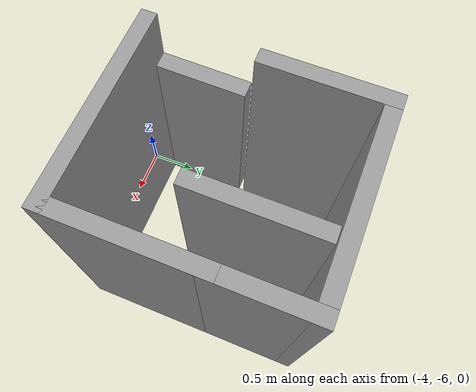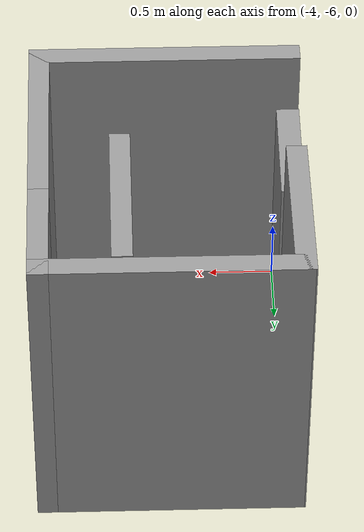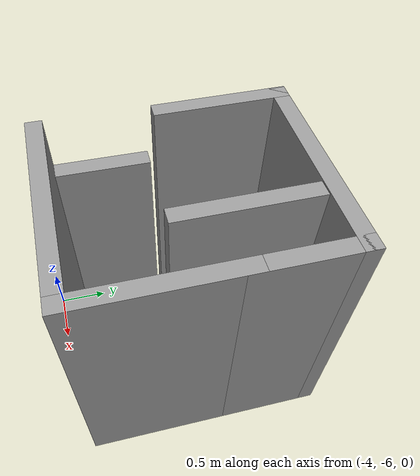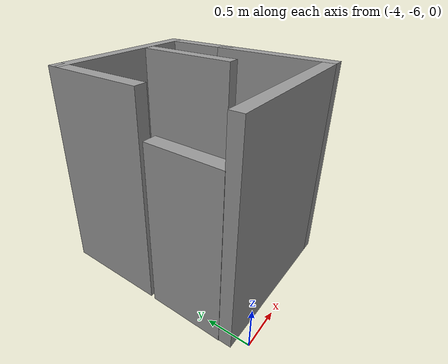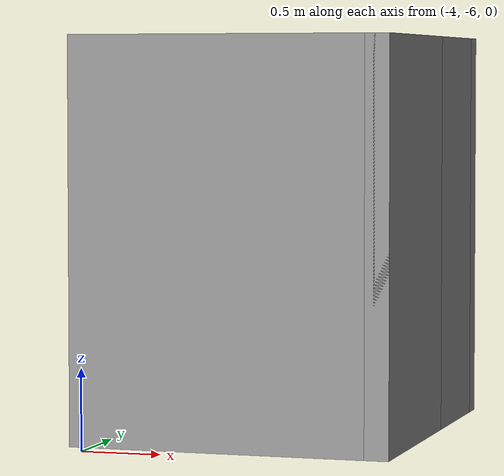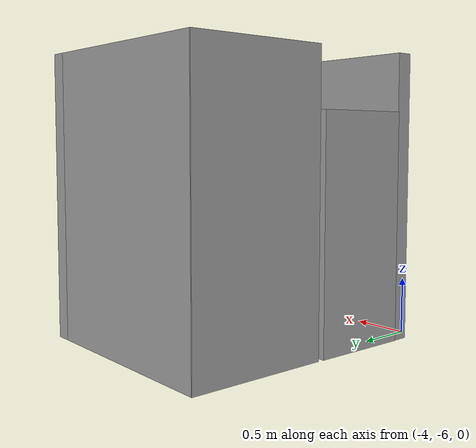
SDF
<?xml version='1.0'?>
<sdf version='1.7'>
  <model name='home_test'>
    <pose>-2.0675 -2.9325 0 0 -0 0</pose>
    <link name='Door_0'>
      <collision name='Door_0_Collision'>
        <geometry>
          <box>
            <size>0.9 0.17 2</size>
          </box>
        </geometry>
        <pose>0 0 1 0 -0 0</pose>
      </collision>
      <visual name='Door_0_Visual'>
        <pose>0 0 1 0 -0 0</pose>
        <geometry>
          <box>
            <size>0.9 0.17 2</size>
          </box>
        </geometry>
        <material>
          <script>
            <uri>file://media/materials/scripts/gazebo.material</uri>
            <name>Gazebo/Grey</name>
          </script>
        </material>
      </visual>
      <pose>-1.9825 -2.3375 0 0 0 -1.5818</pose>
    </link>
    <link name='Wall_10'>
      <collision name='Wall_10_Collision'>
        <geometry>
          <box>
            <size>1.25 0.15 2.5</size>
          </box>
        </geometry>
        <pose>0 0 1.25 0 -0 0</pose>
      </collision>
      <visual name='Wall_10_Visual'>
        <pose>0 0 1.25 0 -0 0</pose>
        <geometry>
          <box>
            <size>1.25 0.15 2.5</size>
          </box>
        </geometry>
        <material>
          <script>
            <uri>file://media/materials/scripts/gazebo.material</uri>
            <name>Gazebo/Grey</name>
          </script>
          <ambient>1 1 1 1</ambient>
        </material>
        <meta>
          <layer>0</layer>
        </meta>
      </visual>
      <pose>-0.7225 -1.3675 0 0 -0 -1.5708</pose>
    </link>
    <link name='Wall_4'>
      <collision name='Wall_4_Collision'>
        <geometry>
          <box>
            <size>2 0.15 2.5</size>
          </box>
        </geometry>
        <pose>0 0 1.25 0 -0 0</pose>
      </collision>
      <visual name='Wall_4_Visual'>
        <pose>0 0 1.25 0 -0 0</pose>
        <geometry>
          <box>
            <size>2 0.15 2.5</size>
          </box>
        </geometry>
        <material>
          <script>
            <uri>file://media/materials/scripts/gazebo.material</uri>
            <name>Gazebo/Grey</name>
          </script>
          <ambient>1 1 1 1</ambient>
        </material>
        <meta>
          <layer>0</layer>
        </meta>
      </visual>
      <pose>-1.0675 -2.8575 0 0 -0 0</pose>
    </link>
    <link name='Wall_5'>
      <collision name='Wall_5_Collision'>
        <geometry>
          <box>
            <size>1.5 0.15 2.5</size>
          </box>
        </geometry>
        <pose>0 0 1.25 0 -0 0</pose>
      </collision>
      <visual name='Wall_5_Visual'>
        <pose>0 0 1.25 0 -0 0</pose>
        <geometry>
          <box>
            <size>1.5 0.15 2.5</size>
          </box>
        </geometry>
        <material>
          <script>
            <uri>file://media/materials/scripts/gazebo.material</uri>
            <name>Gazebo/Grey</name>
          </script>
          <ambient>1 1 1 1</ambient>
        </material>
        <meta>
          <layer>0</layer>
        </meta>
      </visual>
      <pose>-0.1425 -2.1825 0 0 -0 1.5708</pose>
    </link>
    <link name='Wall_6'>
      <collision name='Wall_6_Collision'>
        <geometry>
          <box>
            <size>1 0.15 2.5</size>
          </box>
        </geometry>
        <pose>0 0 1.25 0 -0 0</pose>
      </collision>
      <visual name='Wall_6_Visual'>
        <pose>0 0 1.25 0 -0 0</pose>
        <geometry>
          <box>
            <size>1 0.15 2.5</size>
          </box>
        </geometry>
        <material>
          <script>
            <uri>file://media/materials/scripts/gazebo.material</uri>
            <name>Gazebo/Grey</name>
          </script>
          <ambient>1 1 1 1</ambient>
        </material>
        <meta>
          <layer>0</layer>
        </meta>
      </visual>
      <pose>-0.1425 -1.0825 0 0 -0 1.5708</pose>
    </link>
    <link name='Wall_7'>
      <collision name='Wall_7_Collision'>
        <geometry>
          <box>
            <size>1.98 0.15 2.5</size>
          </box>
        </geometry>
        <pose>0 0 1.25 0 -0 0</pose>
      </collision>
      <visual name='Wall_7_Visual'>
        <pose>0 0 1.25 0 -0 0</pose>
        <geometry>
          <box>
            <size>1.98 0.15 2.5</size>
          </box>
        </geometry>
        <material>
          <script>
            <uri>file://media/materials/scripts/gazebo.material</uri>
            <name>Gazebo/Grey</name>
          </script>
          <ambient>1 1 1 1</ambient>
        </material>
        <meta>
          <layer>0</layer>
        </meta>
      </visual>
      <pose>-1.0575 -0.6575 0 0 -0 3.14159</pose>
    </link>
    <link name='Wall_8'>
      <collision name='Wall_8_Collision'>
        <geometry>
          <box>
            <size>1.25 0.15 2.5</size>
          </box>
        </geometry>
        <pose>0 0 1.25 0 -0 0</pose>
      </collision>
      <visual name='Wall_8_Visual'>
        <pose>0 0 1.25 0 -0 0</pose>
        <geometry>
          <box>
            <size>1.25 0.15 2.5</size>
          </box>
        </geometry>
        <material>
          <script>
            <uri>file://media/materials/scripts/gazebo.material</uri>
            <name>Gazebo/Grey</name>
          </script>
          <ambient>1 1 1 1</ambient>
        </material>
        <meta>
          <layer>0</layer>
        </meta>
      </visual>
      <pose>-1.9825 -1.2075 0 0 -0 -1.5708</pose>
    </link>
    <static>1</static>
  </model>
</sdf>
